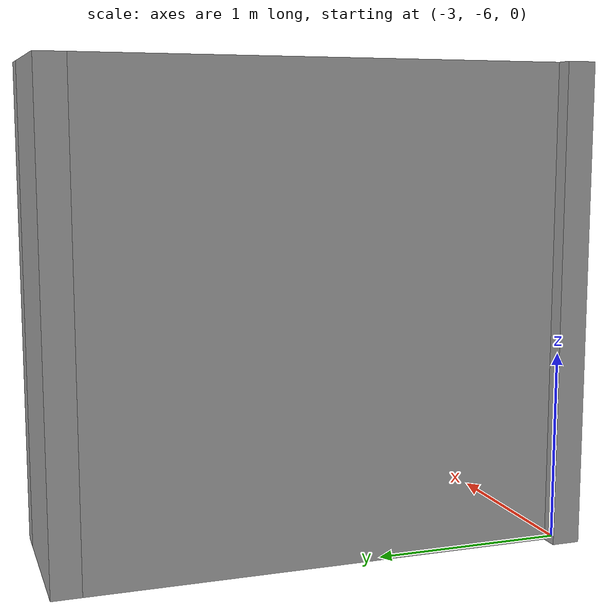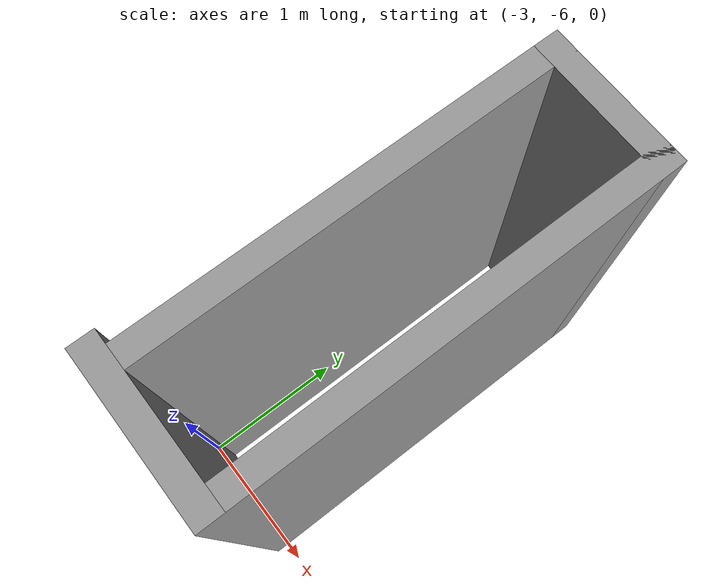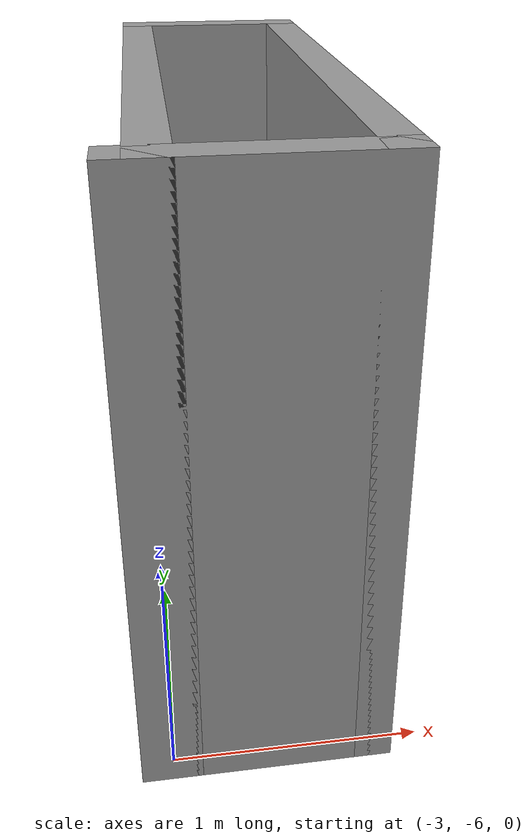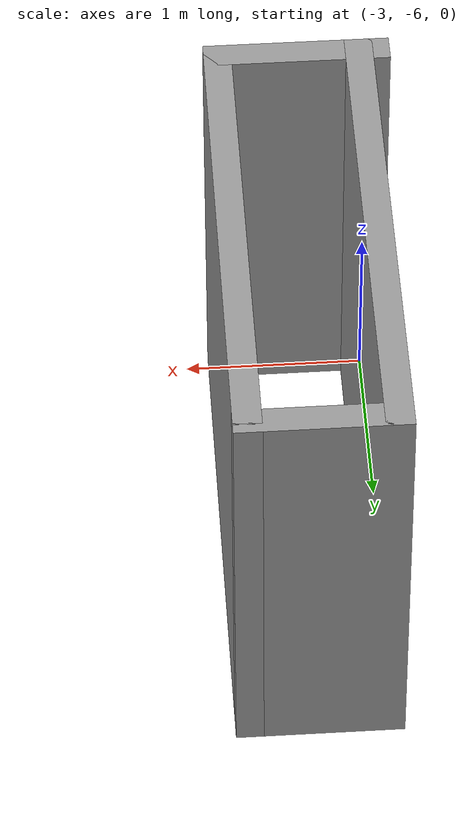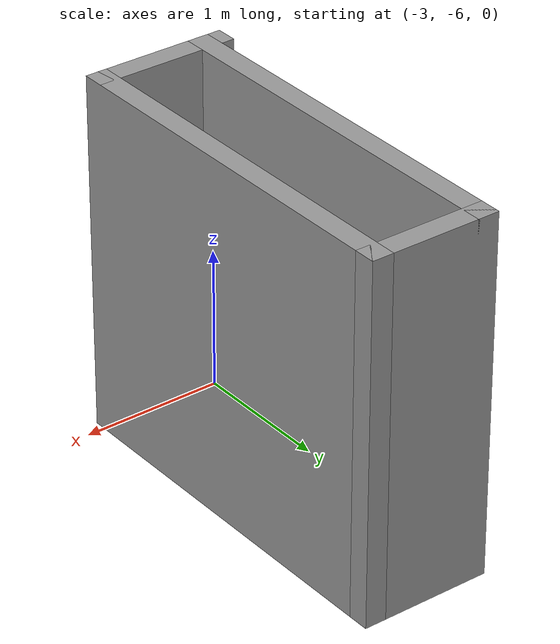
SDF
<?xml version='1.0'?>
<sdf version='1.6'>
  <model name='InnerWall'>
    <pose frame=''>-2.625 -4.71 0 0 -0 0</pose>
    <link name='Wall_1'>
      <collision name='Wall_1_Collision'>
        <geometry>
          <box>
            <size>2.75 0.15 2.5</size>
          </box>
        </geometry>
        <pose frame=''>0 0 1.25 0 -0 0</pose>
      </collision>
      <visual name='Wall_1_Visual'>
        <pose frame=''>0 0 1.25 0 -0 0</pose>
        <geometry>
          <box>
            <size>2.75 0.15 2.5</size>
          </box>
        </geometry>
        <material>
          <script>
            <uri>file://media/materials/scripts/gazebo.material</uri>
            <name>Gazebo/Grey</name>
          </script>
          <ambient>1 1 1 1</ambient>
        </material>
      </visual>
      <pose frame=''>-0.335 0 0 0 0 -1.5708</pose>
    </link>
    <link name='Wall_3'>
      <collision name='Wall_3_Collision'>
        <geometry>
          <box>
            <size>1 0.15 2.5</size>
          </box>
        </geometry>
        <pose frame=''>0 0 1.25 0 -0 0</pose>
      </collision>
      <visual name='Wall_3_Visual'>
        <pose frame=''>0 0 1.25 0 -0 0</pose>
        <geometry>
          <box>
            <size>1 0.15 2.5</size>
          </box>
        </geometry>
        <material>
          <script>
            <uri>file://media/materials/scripts/gazebo.material</uri>
            <name>Gazebo/Grey</name>
          </script>
          <ambient>1 1 1 1</ambient>
        </material>
      </visual>
      <pose frame=''>0 -1.3 0 0 -0 0</pose>
    </link>
    <link name='Wall_4'>
      <collision name='Wall_4_Collision'>
        <geometry>
          <box>
            <size>2.75 0.15 2.5</size>
          </box>
        </geometry>
        <pose frame=''>0 0 1.25 0 -0 0</pose>
      </collision>
      <visual name='Wall_4_Visual'>
        <pose frame=''>0 0 1.25 0 -0 0</pose>
        <geometry>
          <box>
            <size>2.75 0.15 2.5</size>
          </box>
        </geometry>
        <material>
          <script>
            <uri>file://media/materials/scripts/gazebo.material</uri>
            <name>Gazebo/Grey</name>
          </script>
          <ambient>1 1 1 1</ambient>
        </material>
      </visual>
      <pose frame=''>0.425 0 0 0 -0 1.5708</pose>
    </link>
    <link name='Wall_7'>
      <collision name='Wall_7_Collision'>
        <geometry>
          <box>
            <size>0.91 0.15 2.5</size>
          </box>
        </geometry>
        <pose frame=''>0 0 1.25 0 -0 0</pose>
      </collision>
      <visual name='Wall_7_Visual'>
        <pose frame=''>0 0 1.25 0 -0 0</pose>
        <geometry>
          <box>
            <size>0.91 0.15 2.5</size>
          </box>
        </geometry>
        <material>
          <script>
            <uri>file://media/materials/scripts/gazebo.material</uri>
            <name>Gazebo/Grey</name>
          </script>
          <ambient>1 1 1 1</ambient>
        </material>
      </visual>
      <pose frame=''>0.045 1.3 0 0 -0 3.14159</pose>
    </link>
    <static>1</static>
  </model>
</sdf>
